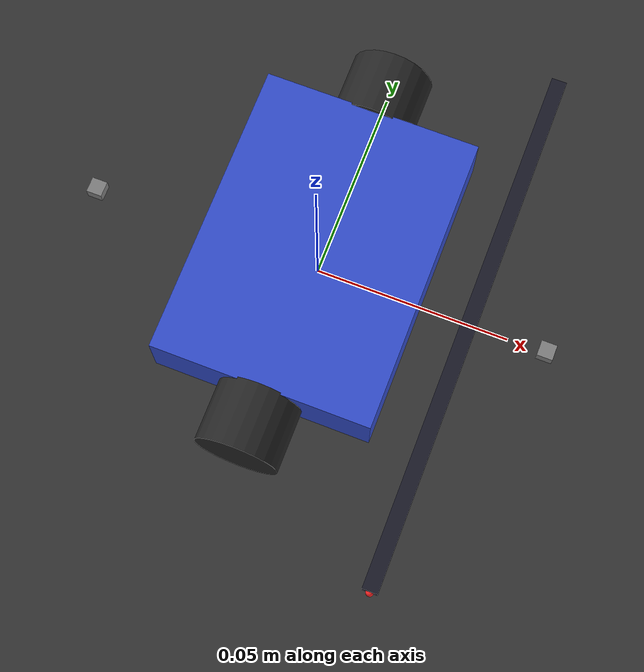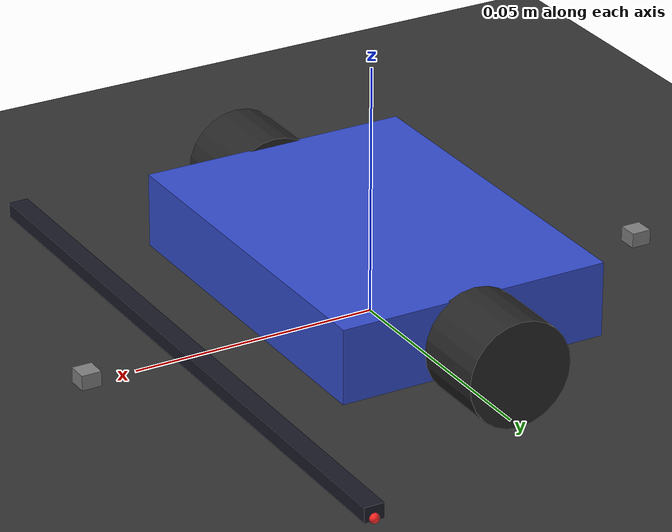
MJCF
<mujoco model="micromouse">
  <compiler angle="radian"/>

  <option cone="elliptic" impratio="1.5" timestep="2e-5"
          gravity="0 0 -9.81"
          jacobian="dense" iterations="200" tolerance="1e-10"/>

  <default>
    <!-- 接触参数：condim=3 启用扭转摩擦[2]，禁用滚动摩擦[3]（condim=4 的滚动摩擦会锁死偏航） -->
    <!-- solref: [刚度, 阻尼] — 越小越软，0.001=很软 -->
    <!-- solimp: [dmin dmax width mid] — 穿透约束 -->
    <geom condim="3" solref="0.001 0.7" solimp="0.95 0.99 0.0001"/>
    <joint limited="false" armature="1e-7"/>
    <motor ctrlrange="-10 10"/>
  </default>

  <asset>
    <texture name="tex_floor" type="2d" builtin="checker" width="512" height="512"
             rgb1="0.15 0.15 0.15" rgb2="0.25 0.25 0.25"/>
    <material name="mat_floor" texture="tex_floor" texrepeat="10 10" reflectance="0.1"/>
    <material name="mat_chassis" rgba="0.2 0.3 0.8 1"/>
    <material name="mat_wheel" rgba="0.15 0.15 0.15 1"/>
    <material name="mat_caster" rgba="0.5 0.5 0.5 1"/>
    <material name="mat_sensor_bar" rgba="0.1 0.1 0.15 1"/>
    <material name="mat_led" rgba="1 0.15 0.15 1"/>
    <material name="mat_led_dim" rgba="0.4 0.05 0.05 1"/>
  </asset>

  <worldbody>
    <!-- 地面 -->
    <geom name="floor" type="plane" size="3 3 0.001" material="mat_floor"/>

    <body name="chassis" pos="0 0 0.012">  <!-- ← 初始离地高度 (m) -->

      <freejoint name="chassis_free"/>

      <!-- ==== 质量 & 惯量：mass=车重(kg) | pos=质心偏移 | diaginertia=Ixx Iyy Izz 转动惯量 (kg·m²) ==== -->
      <inertial mass="0.090" pos="0 0 -0.004"
               diaginertia="4.4e-5 2.4e-5 6.5e-5"/>

      <!-- 车壳：纯视觉，不参与碰撞 (contype/conaffinity=0) -->
      <geom name="chassis_body" type="box" size="0.0275 0.0375 0.0075"
            material="mat_chassis" contype="0" conaffinity="0"/>

      <!-- IMU 安装位置 (轮轴中心) -->
      <site name="imu_site" pos="0 0 0" size="0.002"/>

      <!-- ═══════════════════════════════════════════════════════════
        左驱动轮 — Y=+0.045 (左), Z偏移=-0.0015 (让轮子刚好触地)
        ═══════════════════════════════════════════════════════════ -->
      <!-- 左驱动轮：Y=0.045(轮距/2) | Z=-0.0015(轮心高度) | mass=轮重(kg) -->
      <!-- size=半径(m) 半宽(m) | friction=切向 扭转 滚动摩擦系数 -->
      <body name="wheel_L" pos="0 0.045 -0.0015">
        <joint name="axle_L" type="hinge" axis="0 1 0"/>
        <inertial mass="0.0035" pos="0 0 0"
                 diaginertia="2e-7 3.5e-7 2e-7"/>
        <geom name="wheel_L_geom" type="cylinder" size="0.0105 0.008"
              pos="0 0 0" zaxis="0 1 0" material="mat_wheel"
              friction="1.3 0.08 0.01" priority="1"/>
      </body>

      <!-- ═══════════════════════════════════════════════════════════
        右驱动轮 — Y=-0.045 (右), Z偏移=-0.0015
        ═══════════════════════════════════════════════════════════ -->
      <!-- 右驱动轮：Y=-0.045(轮距/2) | Z=-0.0015(轮心高度) -->
      <body name="wheel_R" pos="0 -0.045 -0.0015">
        <joint name="axle_R" type="hinge" axis="0 1 0"/>
        <inertial mass="0.0035" pos="0 0 0"
                 diaginertia="2e-7 3.5e-7 2e-7"/>
        <geom name="wheel_R_geom" type="cylinder" size="0.0105 0.008"
              pos="0 0 0" zaxis="0 1 0" material="mat_wheel"
              friction="1.3 0.08 0.01" priority="1"/>
      </body>

      <!-- 后滑板：防后翻 | size=半尺寸(m) | pos=X前后 Y左右 Z高度 | friction=切向 扭转 滚动 -->
      <geom name="skid_rear" type="box" size="0.002 0.002 0.0015"
            pos="-0.060 0 -0.01049"
            material="mat_caster"
            friction="0 0 0" priority="1"/>

      <!-- 前滑板：防前翻(翘头) -->
      <geom name="skid_front" type="box" size="0.002 0.002 0.0015"
            pos="0.060 0 -0.01049"
            material="mat_caster"
            friction="0 0 0" priority="1"/>

      <!-- ═══════════════════════════════════════════════════════════
        光电管巡线传感器 — 纯视觉 (contype/conaffinity=0)
        ═══════════════════════════════════════════════════════════ -->
      <!-- 传感器PCB条：厚2mm(X) × 长140mm(Y) × 高1.5mm(Z) -->
      <geom name="sensor_bar" type="box" size="0.002 0.070 0.0015"
            pos="0.040 0 -0.010" material="mat_sensor_bar"
            contype="0" conaffinity="0"/>

      <!-- 16个光电管LED，沿Y轴排列，间距 140mm/15=9.33mm -->
      <geom name="led_00" type="sphere" size="0.001" pos="0.040 -0.070 -0.011" material="mat_led" contype="0" conaffinity="0"/>
      <geom name="led_01" type="sphere" size="0.001" pos="0.040 -0.061 -0.011" material="mat_led" contype="0" conaffinity="0"/>
      <geom name="led_02" type="sphere" size="0.001" pos="0.040 -0.052 -0.011" material="mat_led" contype="0" conaffinity="0"/>
      <geom name="led_03" type="sphere" size="0.001" pos="0.040 -0.042 -0.011" material="mat_led" contype="0" conaffinity="0"/>
      <geom name="led_04" type="sphere" size="0.001" pos="0.040 -0.033 -0.011" material="mat_led" contype="0" conaffinity="0"/>
      <geom name="led_05" type="sphere" size="0.001" pos="0.040 -0.024 -0.011" material="mat_led" contype="0" conaffinity="0"/>
      <geom name="led_06" type="sphere" size="0.001" pos="0.040 -0.014 -0.011" material="mat_led" contype="0" conaffinity="0"/>
      <geom name="led_07" type="sphere" size="0.001" pos="0.040 -0.005 -0.011" material="mat_led" contype="0" conaffinity="0"/>
      <geom name="led_08" type="sphere" size="0.001" pos="0.040  0.005 -0.011" material="mat_led" contype="0" conaffinity="0"/>
      <geom name="led_09" type="sphere" size="0.001" pos="0.040  0.014 -0.011" material="mat_led" contype="0" conaffinity="0"/>
      <geom name="led_10" type="sphere" size="0.001" pos="0.040  0.024 -0.011" material="mat_led" contype="0" conaffinity="0"/>
      <geom name="led_11" type="sphere" size="0.001" pos="0.040  0.033 -0.011" material="mat_led" contype="0" conaffinity="0"/>
      <geom name="led_12" type="sphere" size="0.001" pos="0.040  0.042 -0.011" material="mat_led" contype="0" conaffinity="0"/>
      <geom name="led_13" type="sphere" size="0.001" pos="0.040  0.052 -0.011" material="mat_led" contype="0" conaffinity="0"/>
      <geom name="led_14" type="sphere" size="0.001" pos="0.040  0.061 -0.011" material="mat_led" contype="0" conaffinity="0"/>
      <geom name="led_15" type="sphere" size="0.001" pos="0.040  0.070 -0.011" material="mat_led" contype="0" conaffinity="0"/>

    </body>

    <!-- WALLS -->
  </worldbody>

  <actuator>
    <!-- 轮毂直驱电机：ctrl 值 = 轮端扭矩 (Nm) -->
    <motor name="motor_L" joint="axle_L" gear="1"/>
    <motor name="motor_R" joint="axle_R" gear="1"/>
  </actuator>

  <sensor>
    <!-- 6轴IMU @ 轮轴中心 -->
    <gyro name="gyro" site="imu_site"/>
    <accelerometer name="accel" site="imu_site"/>

    <!-- 地面真值 (验证用) -->
    <framepos name="pos" objtype="body" objname="chassis"/>
    <framequat name="quat" objtype="body" objname="chassis"/>
    <framelinvel name="linvel" objtype="body" objname="chassis"/>
    <frameangvel name="angvel" objtype="body" objname="chassis"/>

    <!-- 编码器：轮轴角度/角速度 -->
    <jointpos name="enc_L_pos" joint="axle_L"/>
    <jointvel name="enc_L_vel" joint="axle_L"/>
    <jointpos name="enc_R_pos" joint="axle_R"/>
    <jointvel name="enc_R_vel" joint="axle_R"/>
  </sensor>
</mujoco>
